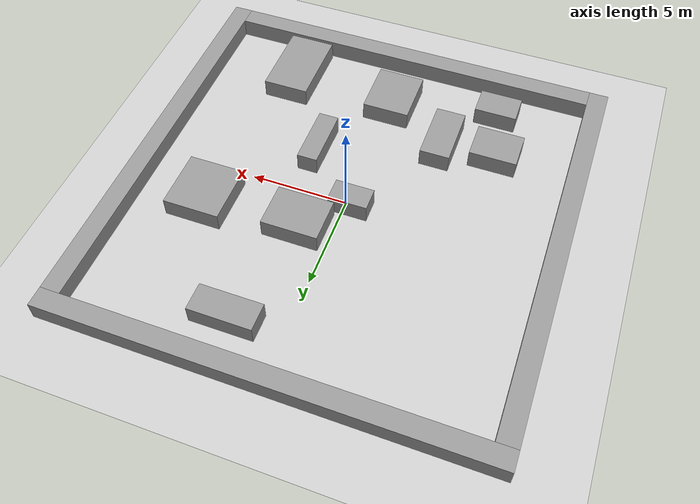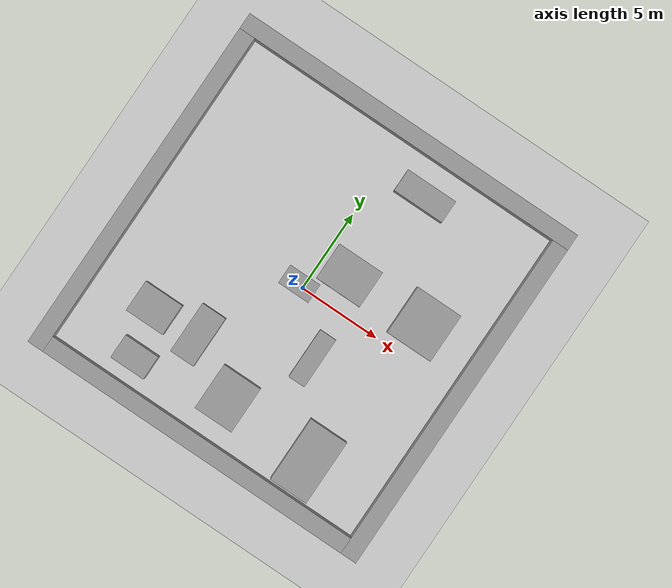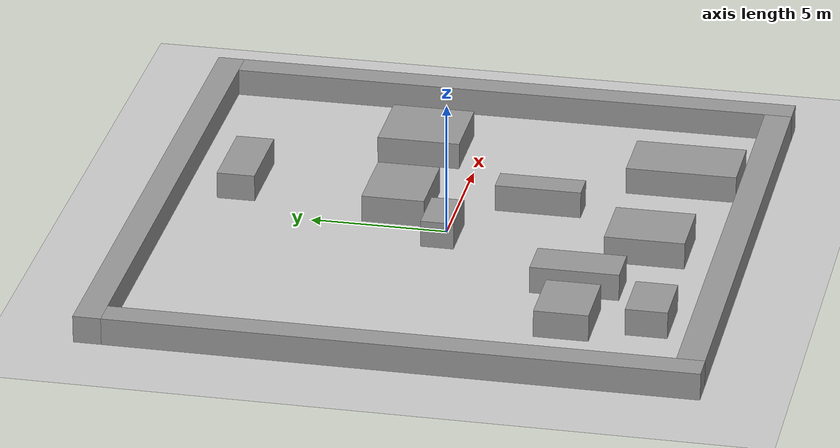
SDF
<?xml version="1.0" ?>
<sdf version="1.6">
  <world name="default">
    <include>
      <uri>model://sun</uri>
    </include>
    <include>
      <uri>model://ground_plane</uri>
    </include>

    <model name='obstacle_0'>
      <static>true</static>
      <pose>0.0 10.5 0.5 0 0 0</pose>
      <link name='link'>
        <visual name='visual'>
          <geometry>
            <box>
              <size>22.0 1.0 1.0</size>
            </box>
          </geometry>
          <material>
            <script>
              <uri>file://media/materials/scripts/gazebo.material</uri>
              <name>Gazebo/Grey</name>
            </script>
          </material>
        </visual>
        <collision name='collision'>
          <geometry>
            <box>
              <size>22.0 1.0 1.0</size>
            </box>
          </geometry>
        </collision>
      </link>
    </model>
    <model name='obstacle_1'>
      <static>true</static>
      <pose>-10.5 -0.5 0.5 0 0 0</pose>
      <link name='link'>
        <visual name='visual'>
          <geometry>
            <box>
              <size>1.0 21.0 1.0</size>
            </box>
          </geometry>
          <material>
            <script>
              <uri>file://media/materials/scripts/gazebo.material</uri>
              <name>Gazebo/Grey</name>
            </script>
          </material>
        </visual>
        <collision name='collision'>
          <geometry>
            <box>
              <size>1.0 21.0 1.0</size>
            </box>
          </geometry>
        </collision>
      </link>
    </model>
    <model name='obstacle_2'>
      <static>true</static>
      <pose>10.5 -0.5 0.5 0 0 0</pose>
      <link name='link'>
        <visual name='visual'>
          <geometry>
            <box>
              <size>1.0 21.0 1.0</size>
            </box>
          </geometry>
          <material>
            <script>
              <uri>file://media/materials/scripts/gazebo.material</uri>
              <name>Gazebo/Grey</name>
            </script>
          </material>
        </visual>
        <collision name='collision'>
          <geometry>
            <box>
              <size>1.0 21.0 1.0</size>
            </box>
          </geometry>
        </collision>
      </link>
    </model>
    <model name='obstacle_3'>
      <static>true</static>
      <pose>2.75 8.05 0.5 0 0 0</pose>
      <link name='link'>
        <visual name='visual'>
          <geometry>
            <box>
              <size>3.2 1.4000000000000001 1.0</size>
            </box>
          </geometry>
          <material>
            <script>
              <uri>file://media/materials/scripts/gazebo.material</uri>
              <name>Gazebo/Grey</name>
            </script>
          </material>
        </visual>
        <collision name='collision'>
          <geometry>
            <box>
              <size>3.2 1.4000000000000001 1.0</size>
            </box>
          </geometry>
        </collision>
      </link>
    </model>
    <model name='obstacle_4'>
      <static>true</static>
      <pose>6.699999999999999 2.125 0.5 0 0 0</pose>
      <link name='link'>
        <visual name='visual'>
          <geometry>
            <box>
              <size>2.9000000000000004 3.0500000000000003 1.0</size>
            </box>
          </geometry>
          <material>
            <script>
              <uri>file://media/materials/scripts/gazebo.material</uri>
              <name>Gazebo/Grey</name>
            </script>
          </material>
        </visual>
        <collision name='collision'>
          <geometry>
            <box>
              <size>2.9000000000000004 3.0500000000000003 1.0</size>
            </box>
          </geometry>
        </collision>
      </link>
    </model>
    <model name='obstacle_5'>
      <static>true</static>
      <pose>1.75 2.0500000000000007 0.5 0 0 0</pose>
      <link name='link'>
        <visual name='visual'>
          <geometry>
            <box>
              <size>2.9000000000000004 2.3000000000000003 1.0</size>
            </box>
          </geometry>
          <material>
            <script>
              <uri>file://media/materials/scripts/gazebo.material</uri>
              <name>Gazebo/Grey</name>
            </script>
          </material>
        </visual>
        <collision name='collision'>
          <geometry>
            <box>
              <size>2.9000000000000004 2.3000000000000003 1.0</size>
            </box>
          </geometry>
        </collision>
      </link>
    </model>
    <model name='obstacle_6'>
      <static>true</static>
      <pose>-0.29999999999999893 0.10000000000000142 0.5 0 0 0</pose>
      <link name='link'>
        <visual name='visual'>
          <geometry>
            <box>
              <size>2.0 1.2000000000000002 1.0</size>
            </box>
          </geometry>
          <material>
            <script>
              <uri>file://media/materials/scripts/gazebo.material</uri>
              <name>Gazebo/Grey</name>
            </script>
          </material>
        </visual>
        <collision name='collision'>
          <geometry>
            <box>
              <size>2.0 1.2000000000000002 1.0</size>
            </box>
          </geometry>
        </collision>
      </link>
    </model>
    <model name='obstacle_7'>
      <static>true</static>
      <pose>2.625 -2.924999999999999 0.5 0 0 0</pose>
      <link name='link'>
        <visual name='visual'>
          <geometry>
            <box>
              <size>1.05 3.1500000000000004 1.0</size>
            </box>
          </geometry>
          <material>
            <script>
              <uri>file://media/materials/scripts/gazebo.material</uri>
              <name>Gazebo/Grey</name>
            </script>
          </material>
        </visual>
        <collision name='collision'>
          <geometry>
            <box>
              <size>1.05 3.1500000000000004 1.0</size>
            </box>
          </geometry>
        </collision>
      </link>
    </model>
    <model name='obstacle_8'>
      <static>true</static>
      <pose>-3.375 -5.3999999999999995 0.5 0 0 0</pose>
      <link name='link'>
        <visual name='visual'>
          <geometry>
            <box>
              <size>1.55 3.2 1.0</size>
            </box>
          </geometry>
          <material>
            <script>
              <uri>file://media/materials/scripts/gazebo.material</uri>
              <name>Gazebo/Grey</name>
            </script>
          </material>
        </visual>
        <collision name='collision'>
          <geometry>
            <box>
              <size>1.55 3.2 1.0</size>
            </box>
          </geometry>
        </collision>
      </link>
    </model>
    <model name='obstacle_9'>
      <static>true</static>
      <pose>-6.225 -5.5249999999999995 0.5 0 0 0</pose>
      <link name='link'>
        <visual name='visual'>
          <geometry>
            <box>
              <size>2.45 1.9500000000000002 1.0</size>
            </box>
          </geometry>
          <material>
            <script>
              <uri>file://media/materials/scripts/gazebo.material</uri>
              <name>Gazebo/Grey</name>
            </script>
          </material>
        </visual>
        <collision name='collision'>
          <geometry>
            <box>
              <size>2.45 1.9500000000000002 1.0</size>
            </box>
          </geometry>
        </collision>
      </link>
    </model>
    <model name='obstacle_10'>
      <static>true</static>
      <pose>5.650000000000002 -7.775 0.5 0 0 0</pose>
      <link name='link'>
        <visual name='visual'>
          <geometry>
            <box>
              <size>2.4000000000000004 4.05 1.0</size>
            </box>
          </geometry>
          <material>
            <script>
              <uri>file://media/materials/scripts/gazebo.material</uri>
              <name>Gazebo/Grey</name>
            </script>
          </material>
        </visual>
        <collision name='collision'>
          <geometry>
            <box>
              <size>2.4000000000000004 4.05 1.0</size>
            </box>
          </geometry>
        </collision>
      </link>
    </model>
    <model name='obstacle_11'>
      <static>true</static>
      <pose>-0.02499999999999858 -7.4 0.5 0 0 0</pose>
      <link name='link'>
        <visual name='visual'>
          <geometry>
            <box>
              <size>2.45 2.9000000000000004 1.0</size>
            </box>
          </geometry>
          <material>
            <script>
              <uri>file://media/materials/scripts/gazebo.material</uri>
              <name>Gazebo/Grey</name>
            </script>
          </material>
        </visual>
        <collision name='collision'>
          <geometry>
            <box>
              <size>2.45 2.9000000000000004 1.0</size>
            </box>
          </geometry>
        </collision>
      </link>
    </model>
    <model name='obstacle_12'>
      <static>true</static>
      <pose>-5.6 -8.4 0.5 0 0 0</pose>
      <link name='link'>
        <visual name='visual'>
          <geometry>
            <box>
              <size>2.2 1.5 1.0</size>
            </box>
          </geometry>
          <material>
            <script>
              <uri>file://media/materials/scripts/gazebo.material</uri>
              <name>Gazebo/Grey</name>
            </script>
          </material>
        </visual>
        <collision name='collision'>
          <geometry>
            <box>
              <size>2.2 1.5 1.0</size>
            </box>
          </geometry>
        </collision>
      </link>
    </model>
    <model name='obstacle_13'>
      <static>true</static>
      <pose>0.0 -10.5 0.5 0 0 0</pose>
      <link name='link'>
        <visual name='visual'>
          <geometry>
            <box>
              <size>20.0 1.0 1.0</size>
            </box>
          </geometry>
          <material>
            <script>
              <uri>file://media/materials/scripts/gazebo.material</uri>
              <name>Gazebo/Grey</name>
            </script>
          </material>
        </visual>
        <collision name='collision'>
          <geometry>
            <box>
              <size>20.0 1.0 1.0</size>
            </box>
          </geometry>
        </collision>
      </link>
    </model>
  </world>
</sdf>
